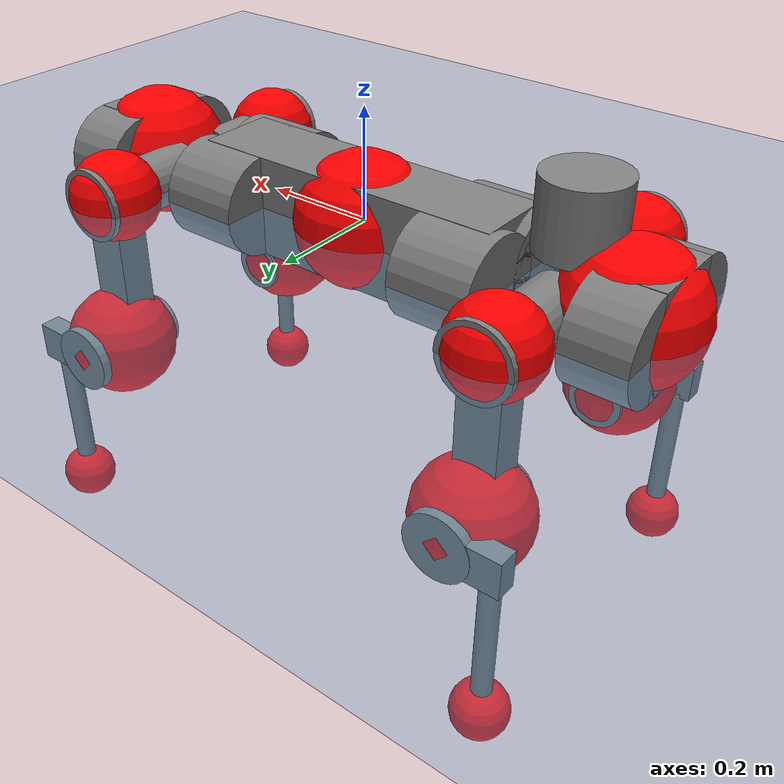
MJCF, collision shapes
<mujoco model="anymal_c">
  <compiler angle="radian" assetdir="assets" balanceinertia="true" inertiafromgeom="false"/>

  <option timestep="0.005" density="1.2" viscosity="2e-05"/>

  <size nkey="1"/>

  <visual>
    <quality shadowsize="8192"/>
    <map shadowclip="0.5"/>
  </visual>

  <default>
    <default class="/">
      <material specular="0" shininess="0.25"/>
      <geom contype="0" conaffinity="0" group="1" solref="-1000 -80"/>
      <site size="0.01 0.005 0.005" group="5"/>
      <general forcelimited="true" forcerange="-80 80" biastype="affine" gainprm="80" biasprm="0 -80 -2"/>
      <default class="anymal_c">
        <joint armature="0.01" damping="0.01" frictionloss="0.1"/>
        <default class="visual">
          <geom type="mesh" group="2"/>
          <default class="visual_zflip"/>
        </default>
        <default class="collision">
          <geom type="cylinder" group="3"/>
          <default class="foot">
            <geom size="0.03 0 0" type="sphere" condim="6" priority="1" friction="0.8 0.02 0.01" solimp="0.015 1 0.03"/>
          </default>
        </default>
      </default>
      <default class="reward_collision_sphere">
        <geom group="5" rgba="1 0 0 1"/>
      </default>
    </default>
  </default>

  <asset>
    <texture type="skybox" colorspace="auto" name="//unnamed_texture_0" builtin="gradient" rgb1="0.95 0.95 0.95" rgb2="0.95 0.95 0.95" width="100" height="600"/>
    <texture type="2d" colorspace="auto" name="texplane" builtin="checker" rgb1="0.345 0.575 0.748" rgb2="0.345 0.575 0.748" markrgb="1 1 1" width="512" height="512"/>
    <texture type="2d" colorspace="linear" name="base" file="base.png"/>
    <texture type="2d" colorspace="linear" name="top_shell" file="top_shell.png"/>
    <texture type="2d" colorspace="linear" name="bottom_shell" file="bottom_shell.png"/>
    <texture type="2d" colorspace="linear" name="remote" file="remote.png"/>
    <texture type="2d" colorspace="linear" name="hatch" file="hatch.png"/>
    <texture type="2d" colorspace="linear" name="handle" file="handle.png"/>
    <texture type="2d" colorspace="linear" name="face" file="face.png"/>
    <texture type="2d" colorspace="linear" name="battery" file="battery.png"/>
    <texture type="2d" colorspace="linear" name="lidar_cage" file="lidar_cage.png"/>
    <texture type="2d" colorspace="linear" name="depth_camera" file="depth_camera.png"/>
    <texture type="2d" colorspace="linear" name="wide_angle_camera" file="wide_angle_camera.png"/>
    <texture type="2d" colorspace="linear" name="lidar" file="lidar.png"/>
    <texture type="2d" colorspace="linear" name="drive" file="drive.png"/>
    <texture type="2d" colorspace="linear" name="hip_l" file="hip_l.png"/>
    <texture type="2d" colorspace="linear" name="shank_l" file="shank_l.png"/>
    <texture type="2d" colorspace="linear" name="foot" file="foot.png"/>
    <texture type="2d" colorspace="linear" name="thigh" file="thigh.png"/>
    <texture type="2d" colorspace="linear" name="shank_r" file="shank_r.png"/>
    <texture type="2d" colorspace="linear" name="hip_r" file="hip_r.png"/>
    <material name="MatPlane" class="/" texture="texplane" texuniform="true" texrepeat="2 2" specular="0.9" shininess="0.5"/>
    <material name="black_plastic" class="/" rgba="0.007 0.007 0.007 1"/>
    <material name="green" class="/" rgba="0.052 0.178 0.033 1"/>
    <material name="red" class="/" rgba="0.178 0.006 0.005 1"/>
    <material name="yellow" class="/" rgba="0.178 0.119 0.006 1"/>
    <material name="lwl" class="/" rgba="0.8 0.8 0.8 1"/>
    <material name="base" class="/" texture="base"/>
    <material name="top_shell" class="/" texture="top_shell"/>
    <material name="bottom_shell" class="/" texture="bottom_shell"/>
    <material name="hip_l" class="/" texture="hip_l"/>
    <material name="thigh" class="/" texture="thigh"/>
    <material name="shank_l" class="/" texture="shank_l"/>
    <material name="foot" class="/" texture="foot"/>
    <material name="hip_r" class="/" texture="hip_r"/>
    <material name="shank" class="/" texture="shank_r"/>
    <material name="hatch" class="/" texture="hatch"/>
    <material name="remote" class="/" texture="remote"/>
    <material name="handle" class="/" texture="handle"/>
    <material name="face" class="/" texture="face"/>
    <material name="depth_camera" class="/" texture="depth_camera"/>
    <material name="wide_angle_camera" class="/" texture="wide_angle_camera"/>
    <material name="battery" class="/" texture="battery"/>
    <material name="lidar_cage" class="/" texture="lidar_cage"/>
    <material name="lidar" class="/" texture="lidar"/>
    <material name="drive" class="/" texture="drive"/>
    <mesh name="base_0" class="/" file="base_0.obj"/>
    <mesh name="base_1" class="/" file="base_1.obj"/>
    <mesh name="base_2" class="/" file="base_2.obj"/>
    <mesh name="base_3" class="/" file="base_3.obj"/>
    <mesh name="base_4" class="/" file="base_4.obj"/>
    <mesh name="base_5" class="/" file="base_5.obj"/>
    <mesh name="top_shell" class="/" file="top_shell.obj"/>
    <mesh name="bottom_shell" class="/" file="bottom_shell.obj"/>
    <mesh name="remote" class="/" file="remote.obj"/>
    <mesh name="handle" class="/" file="handle.obj"/>
    <mesh name="face" class="/" file="face.obj"/>
    <mesh name="wide_angle_camera" class="/" file="wide_angle_camera.obj"/>
    <mesh name="depth_camera" class="/" file="depth_camera.obj"/>
    <mesh name="battery" class="/" file="battery.obj"/>
    <mesh name="lidar_cage" class="/" file="lidar_cage.obj"/>
    <mesh name="lidar" class="/" file="lidar.obj"/>
    <mesh name="drive" class="/" file="drive.obj"/>
    <mesh name="hip_l" class="/" file="hip_l.obj"/>
    <mesh name="thigh" class="/" file="thigh.obj"/>
    <mesh name="shank_l" class="/" file="shank_l.obj"/>
    <mesh name="foot" class="/" file="foot.obj"/>
    <mesh name="hip_r" class="/" file="hip_r.obj"/>
    <mesh name="hatch" class="/" file="hatch.obj"/>
    <mesh name="shank_r" class="/" file="shank_r.obj"/>
  </asset>

  <worldbody>
    <geom name="floor" class="/" size="100 100 0.125" type="plane" group="0" material="MatPlane"/>
    <light name="toplight_shadow" class="/" pos="0 0 5" dir="0.0990148 0.0990148 -0.990148" type="directional" ambient="0.04 0.04 0.04" diffuse="0.55 0.55 0.55" specular="0.12 0.12 0.12"/>
    <light name="toplight_fill" class="/" pos="0 0 5" dir="0.0990148 0.0990148 -0.990148" type="directional" castshadow="false" ambient="0.04 0.04 0.04" diffuse="0.3 0.3 0.3" specular="0.08 0.08 0.08"/>
    <body name="trunk" childclass="anymal_c" pos="0.00224479 -0.000414261 0.000772449" quat="1 -5.65336e-05 0.000806321 0.000482161">
      <inertial pos="0.000429045 -0.000885789 0.0497669" quat="0.50005 0.499925 0.499967 0.500059" mass="18.9658" diaginertia="1.03191 0.425895 0.210176"/>
      <joint name="//unnamed_joint_0" type="free" armature="0" damping="0" frictionloss="0"/>
      <geom name="//unnamed_geom_1" class="visual" material="green" mesh="base_0"/>
      <geom name="//unnamed_geom_2" class="visual" material="yellow" mesh="base_1"/>
      <geom name="//unnamed_geom_3" class="visual" material="red" mesh="base_2"/>
      <geom name="//unnamed_geom_4" class="visual" material="black_plastic" mesh="base_3"/>
      <geom name="//unnamed_geom_5" class="visual" material="lwl" mesh="base_4"/>
      <geom name="//unnamed_geom_6" class="visual" material="base" mesh="base_5"/>
      <geom name="trunk_1" class="collision" size="0.292574 0.0706212 0.0907987" type="box"/>
      <geom name="trunk_2" class="collision" size="0.0907987 0.0731434" pos="0.239637 0.0649465 0" quat="0.707107 0 0.707107 0"/>
      <geom name="trunk_3" class="collision" size="0.0907987 0.0731434" pos="-0.239637 0.0649465 0" quat="0.707107 0 0.707107 0"/>
      <geom name="trunk_4" class="collision" size="0.0907987 0.0731434" pos="0.239637 -0.0649465 0" quat="0.707107 0 0.707107 0"/>
      <geom name="trunk_5" class="collision" size="0.0907987 0.0731434" pos="-0.239637 -0.0649465 0" quat="0.707107 0 0.707107 0"/>
      <geom name="//unnamed_geom_12" class="visual" material="top_shell" mesh="top_shell"/>
      <geom name="//unnamed_geom_13" class="visual" material="bottom_shell" mesh="bottom_shell"/>
      <geom name="//unnamed_geom_14" class="visual" material="remote" mesh="remote"/>
      <geom name="//unnamed_geom_15" class="visual" material="handle" mesh="handle"/>
      <geom name="//unnamed_geom_16" class="visual" pos="0.456687 0 0" quat="1 0 0 0" material="face" mesh="face"/>
      <geom name="trunk_6" class="collision" size="0.0554881 0.0706212 0.0907987" pos="0.517285 0 0" type="box"/>
      <geom name="//unnamed_geom_18" class="collision" size="0.0907987 0.0554881" pos="0.517285 0.0649465 0" quat="0.707107 0 0.707107 0"/>
      <geom name="//unnamed_geom_19" class="collision" size="0.0907987 0.0554881" pos="0.517285 -0.0649465 0" quat="0.707107 0 0.707107 0"/>
      <geom name="//unnamed_geom_20" class="visual" pos="0.508632 0 -0.0283175" quat="0.965926 0 0.258819 0" material="depth_camera" mesh="depth_camera"/>
      <geom name="//unnamed_geom_21" class="visual" pos="0.565212 0 0.0149257" material="wide_angle_camera" mesh="wide_angle_camera"/>
      <geom name="//unnamed_geom_22" class="visual_zflip" pos="-0.456687 0 0" quat="0 0 0 1" material="face" mesh="face"/>
      <geom name="trunk_7" class="collision" size="0.0554881 0.0706212 0.0907987" pos="-0.517285 0 0" quat="0 0 0 1" type="box"/>
      <geom name="//unnamed_geom_24" class="collision" size="0.0907987 0.0554881" pos="-0.517285 -0.0649465 0" quat="0 -0.707107 0 0.707107"/>
      <geom name="//unnamed_geom_25" class="collision" size="0.0907987 0.0554881" pos="-0.517285 0.0649465 0" quat="0 -0.707107 0 0.707107"/>
      <geom name="//unnamed_geom_26" class="visual" pos="-0.508632 0 -0.0283175" quat="0 -0.258819 0 0.965926" material="depth_camera" mesh="depth_camera"/>
      <geom name="//unnamed_geom_27" class="visual_zflip" pos="-0.565212 0 0.0149257" quat="0 0 0 1" material="wide_angle_camera" mesh="wide_angle_camera"/>
      <geom name="//unnamed_geom_28" class="visual" material="battery" mesh="battery"/>
      <geom name="//unnamed_geom_29" class="visual" pos="0 0.068653 0.02976" quat="0.683013 -0.183013 0.183013 0.683013" material="depth_camera" mesh="depth_camera"/>
      <geom name="//unnamed_geom_30" class="visual" pos="0 -0.068653 0.02976" quat="0.683013 0.183013 0.183013 -0.683013" material="depth_camera" mesh="depth_camera"/>
      <geom name="//unnamed_geom_31" class="visual" pos="-0.401047 0 0.0732823" quat="1 0 0 0" material="lidar_cage" mesh="lidar_cage"/>
      <geom name="trunk_8" class="collision" size="0.0706212 0.0605325" pos="-0.401047 0 0.133105"/>
      <geom name="//unnamed_geom_33" class="visual" pos="-0.401047 -6.83485e-05 0.141779" quat="0.707107 0 0 -0.707107" material="lidar" mesh="lidar"/>
      <geom name="//unnamed_geom_34" class="visual" pos="0.330423 0.0965166 -1.19422e-09" quat="0.258819 0.965926 0 0" material="drive" mesh="drive"/>
      <geom name="//unnamed_geom_35" class="visual" pos="0.330423 -0.0965166 1.19422e-09" quat="0.258819 -0.965926 0 0" material="drive" mesh="drive"/>
      <geom name="//unnamed_geom_36" class="visual" pos="-0.330423 0.0965166 1.19422e-09" quat="0 0 0.965926 -0.258819" material="drive" mesh="drive"/>
      <geom name="//unnamed_geom_37" class="visual" pos="-0.330423 -0.0965166 -1.19422e-09" quat="0 0 -0.965926 -0.258819" material="drive" mesh="drive"/>
      <geom name="//unnamed_geom_38" class="visual" pos="0.127806 0 0.0727837" quat="1 0 0 0" material="hatch" mesh="hatch"/>
      <geom name="//unnamed_geom_39" class="reward_collision_sphere" size="0.121065"/>
      <geom name="//unnamed_geom_40" class="reward_collision_sphere" size="0.121065" pos="0.4958 0 0"/>
      <geom name="//unnamed_geom_41" class="reward_collision_sphere" size="0.121065" pos="-0.4958 0 0"/>
      <site name="imu" pos="0.271614 0.00556378 0.0548272" size="0.0100887"/>
      <camera name="track" pos="0 -1.85562 0" quat="0.707107 0.707107 0 0" mode="trackcom"/>
      <camera name="ego_camera" pos="0.4958 0 -0.0398815" quat="-0.5 -0.5 0.5 0.5"/>
      <body name="LF_HIP" pos="0.330727 0.0971613 -0.000104376" quat="0.259054 0.965863 0.000407985 4.61597e-05">
        <inertial pos="0.0619487 -0.0144604 -0.0085315" quat="-0.127653 0.71065 -0.137477 0.678071" mass="2.86956" diaginertia="0.00973297 0.00334177 0.00323583"/>
        <joint name="LF_HAA" pos="0 0 0" axis="0.999908 -0.00136825 0.0134855" range="-0.676337 0.48064" armature="0.00994882" damping="0.00673226" frictionloss="0.101404"/>
        <geom name="//unnamed_geom_42" class="visual" pos="0 -7.02508e-05 1.15386e-05" quat="0.258819 -0.965926 0 0" material="hip_l" mesh="hip_l"/>
        <geom name="//unnamed_geom_43" class="visual" pos="0.0659965 -0.0777028 -0.0453738" quat="0.183013 -0.683013 0.683013 0.183013" material="drive" mesh="drive"/>
        <geom name="//unnamed_geom_44" class="collision" size="0.0504437 0.0706212" pos="0.0659965 -0.0110964 -0.00688454" quat="-0.353553 -0.612372 0.612372 -0.353553"/>
        <body name="LF_THIGH" pos="0.0657017 -0.0671254 -0.0425677" quat="0.182414 -0.6829 0.683289 0.182997">
          <inertial pos="0.0348117 3.06604e-05 -0.246762" quat="0.993189 -0.00518873 -0.080611 0.0839723" mass="3.113" diaginertia="0.0482782 0.0204924 0.00420669"/>
          <joint name="LF_HFE" pos="0 0 0" axis="0.999994 -0.00329092 0.00134779" range="-3.16127 3.13772" armature="0.0105089" damping="0.00724871" frictionloss="0.106008"/>
          <geom name="//unnamed_geom_45" class="visual" pos="0.00346134 5.45425e-06 0" quat="0.707107 0 0 -0.707107" material="thigh" mesh="thigh"/>
          <geom name="//unnamed_geom_46" class="collision" size="0.0655768 0.040355" pos="0.0440711 0 0" quat="0.5 0.5 -0.5 -0.5"/>
          <geom name="//unnamed_geom_47" class="collision" size="0.0378328 0.0302662 0.142568" pos="0.0330534 0 -0.140895" quat="0.707107 0 0 -0.707107" type="box"/>
          <geom name="//unnamed_geom_48" class="visual" pos="0.110508 0 -0.284156" quat="1 0 0 0" material="drive" mesh="drive"/>
          <geom name="//unnamed_geom_49" class="collision" size="0.0504437 0.0706212" pos="0.0333839 0 -0.284156" quat="0.707107 0 0.707107 0"/>
          <geom name="//unnamed_geom_50" class="reward_collision_sphere" size="0.08071" pos="0.0275445 0 0"/>
          <body name="LF_SHANK" pos="0.110674 -0.00219933 -0.283973" quat="1 1.8369e-06 6.52418e-05 5.06013e-05">
            <inertial pos="0.00481309 -0.0568572 -0.0801511" quat="0.992743 -0.116339 -0.00115935 -0.0304069" mass="0.603985" diaginertia="0.0170175 0.00654259 0.00112176"/>
            <joint name="LF_KFE" pos="0 0 0" axis="0.999987 0.0011377 -0.00497715" range="-3.17682 3.14373" armature="0.00982763" damping="0.00148637" frictionloss="0.0981228"/>
            <geom name="//unnamed_geom_51" class="visual" pos="0.00112867 0.0060181 0" quat="0.707107 0 0 -0.707107" material="shank_l" mesh="shank_l"/>
            <geom name="LF_kfe_act" class="collision" size="0.0605325 0.0201775" pos="0.0220356 0 0" quat="0.5 0.5 -0.5 -0.5"/>
            <geom name="//unnamed_geom_53" class="collision" size="0.0580093 0.0340495 0.0191686" pos="0.0220356 -0.053348 0" quat="0.5 0.5 -0.5 -0.5" type="box"/>
            <geom name="//unnamed_geom_54" class="visual" pos="0.0143779 -0.0796613 -0.336969" quat="0.382683 0 0 -0.92388" material="foot" mesh="foot"/>
            <geom name="LF_calf" class="collision" size="0.0176553 0.142506" pos="0.0143782 -0.0816007 -0.168484" quat="0.707107 0 0 -0.707107"/>
            <geom name="LF_foot" class="foot" size="0.0333627" pos="0.0143782 -0.0816007 -0.314535" quat="0.707107 0 0 -0.707107"/>
            <geom name="//unnamed_geom_57" class="reward_collision_sphere" size="0.100887" pos="-0.0550889 0 0"/>
            <geom name="//unnamed_geom_58" class="reward_collision_sphere" size="0.0504437" pos="0.0143782 -0.0816007 -0.314535"/>
            <site name="LF_foot" class="foot" pos="0.0143782 -0.0816007 -0.314535" quat="0.707107 0 0 -0.707107" size="0.0100887"/>
          </body>
        </body>
      </body>
      <body name="RF_HIP" pos="0.331029 -0.0969024 -0.00166112" quat="0.258243 -0.96608 -0.000110313 -6.08975e-05">
        <inertial pos="0.0620195 0.0131345 -0.00851847" quat="0.133155 0.68317 0.130222 0.706109" mass="2.83586" diaginertia="0.00945979 0.00339961 0.00325023"/>
        <joint name="RF_HAA" pos="0 0 0" axis="0.999991 0.00164862 -0.00401537" range="-0.512547 0.720084" armature="0.00967836" damping="0.0131564" frictionloss="0.0939143"/>
        <geom name="//unnamed_geom_59" class="visual" pos="0 7.02502e-05 1.15386e-05" quat="0.258819 0.965926 0 0" material="hip_r" mesh="hip_r"/>
        <geom name="//unnamed_geom_60" class="visual" pos="0.0659965 0.0777028 -0.0453738" quat="0.183013 0.683013 0.683013 -0.183013" material="drive" mesh="drive"/>
        <geom name="//unnamed_geom_61" class="collision" size="0.0504437 0.0706212" pos="0.0659965 0.0110964 -0.00688454" quat="-0.353553 0.612372 0.612372 0.353553"/>
        <body name="RF_THIGH" pos="0.0664501 0.0648675 -0.0428282" quat="0.183043 0.683091 0.682904 -0.183094">
          <inertial pos="0.0336807 -0.000938272 -0.245284" quat="0.992836 -0.00451418 -0.0801877 0.0884606" mass="3.18021" diaginertia="0.0492205 0.0209867 0.00422593"/>
          <joint name="RF_HFE" pos="0 0 0" axis="1 0.000137936 0.000225555" range="-3.14918 3.16243" armature="0.0100479" damping="0.0116968" frictionloss="0.0964514"/>
          <geom name="//unnamed_geom_62" class="visual" pos="0.00346134 5.45425e-06 0" quat="0.707107 0 0 -0.707107" material="thigh" mesh="thigh"/>
          <geom name="//unnamed_geom_63" class="collision" size="0.0655768 0.040355" pos="0.0440711 0 0" quat="0.5 0.5 0.5 0.5"/>
          <geom name="//unnamed_geom_64" class="collision" size="0.0378328 0.0302662 0.142568" pos="0.0330534 0 -0.140895" quat="0.707107 0 0 0.707107" type="box"/>
          <geom name="//unnamed_geom_65" class="visual" pos="0.110508 0 -0.284156" quat="1 0 0 0" material="drive" mesh="drive"/>
          <geom name="//unnamed_geom_66" class="collision" size="0.0504437 0.0706212" pos="0.0333839 0 -0.284156" quat="0.707107 0 0.707107 0"/>
          <geom name="//unnamed_geom_67" class="reward_collision_sphere" size="0.08071" pos="0.0275445 0 0"/>
          <body name="RF_SHANK" pos="0.110453 -0.000818268 -0.283135" quat="1 -7.09069e-05 5.0054e-05 7.35032e-05">
            <inertial pos="0.00610959 0.0571939 -0.0805808" quat="0.992959 0.114779 -0.00896092 0.0278997" mass="0.604579" diaginertia="0.016556 0.00636428 0.00109605"/>
            <joint name="RF_KFE" pos="0 0 0" axis="0.999983 -0.0042039 -0.0039306" range="-3.12352 3.14562" armature="0.0105741" damping="0.0126724" frictionloss="0.105826"/>
            <geom name="//unnamed_geom_68" class="visual" pos="0.00112866 -0.00601809 0" quat="0.707107 0 0 0.707107" material="shank" mesh="shank_r"/>
            <geom name="RF_kfe_act" class="collision" size="0.0605325 0.0201775" pos="0.0220356 0 0" quat="0.5 0.5 0.5 0.5"/>
            <geom name="//unnamed_geom_70" class="collision" size="0.0580093 0.0340495 0.0191686" pos="0.0220356 0.053348 0" quat="0.5 0.5 0.5 0.5" type="box"/>
            <geom name="//unnamed_geom_71" class="visual" pos="0.0143785 0.0796613 -0.336969" quat="0.382683 0 0 0.92388" material="foot" mesh="foot"/>
            <geom name="RF_calf" class="collision" size="0.0176553 0.142506" pos="0.0143782 0.0816007 -0.168484" quat="0.707107 0 0 0.707107"/>
            <geom name="RF_foot" class="foot" size="0.0290986" pos="0.0143782 0.0816007 -0.314535" quat="0.707107 0 0 0.707107"/>
            <geom name="//unnamed_geom_74" class="reward_collision_sphere" size="0.100887" pos="-0.0550889 0 0"/>
            <geom name="//unnamed_geom_75" class="reward_collision_sphere" size="0.0504437" pos="0.0143782 0.0816007 -0.314535"/>
            <site name="RF_foot" class="foot" pos="0.0143782 0.0816007 -0.314535" quat="0.707107 0 0 0.707107" size="0.0100887"/>
          </body>
        </body>
      </body>
      <body name="LH_HIP" pos="-0.329874 0.0969768 0.000337268" quat="0.000100241 0.000104117 0.965989 -0.258583">
        <inertial pos="0.0615618 0.0159437 -0.00906396" quat="0.124808 0.676877 0.126716 0.714285" mass="2.91352" diaginertia="0.00953721 0.0033807 0.00330068"/>
        <joint name="LH_HAA" pos="0 0 0" axis="0.999997 -0.00241907 0.000408666" range="-0.499764 0.727391" armature="0.00951209" damping="0.0147415" frictionloss="0.109315"/>
        <geom name="//unnamed_geom_76" class="visual" pos="0 7.02502e-05 1.15386e-05" quat="-0.258819 -0.965926 0 0" material="hip_r" mesh="hip_r"/>
        <geom name="//unnamed_geom_77" class="visual" pos="0.0659965 0.0777028 -0.0453738" quat="0.183013 0.683013 0.683013 -0.183013" material="drive" mesh="drive"/>
        <geom name="//unnamed_geom_78" class="collision" size="0.0504437 0.0706212" pos="0.0659965 0.0110964 -0.00688454" quat="-0.353553 0.612372 0.612372 0.353553"/>
        <body name="LH_THIGH" pos="0.0652544 0.065618 -0.041132" quat="0.182896 0.682984 0.683117 -0.182847">
          <inertial pos="0.0340555 2.91179e-05 -0.244706" quat="0.992799 -0.00555478 -0.0767289 0.091831" mass="3.2024" diaginertia="0.0486704 0.0203831 0.00409231"/>
          <joint name="LH_HFE" pos="0 0 0" axis="0.999998 0.00178607 -0.000431544" range="-3.13753 3.1492" armature="0.0104611" damping="0.010452" frictionloss="0.100996"/>
          <geom name="//unnamed_geom_79" class="visual" pos="0.00346134 5.45425e-06 0" quat="0.707107 0 0 -0.707107" material="thigh" mesh="thigh"/>
          <geom name="//unnamed_geom_80" class="collision" size="0.0655768 0.040355" pos="0.0440711 0 0" quat="0.5 0.5 -0.5 -0.5"/>
          <geom name="//unnamed_geom_81" class="collision" size="0.0378328 0.0302662 0.142568" pos="0.0330534 0 -0.140895" quat="0.707107 0 0 -0.707107" type="box"/>
          <geom name="//unnamed_geom_82" class="visual" pos="0.110508 0 -0.284156" quat="1 0 0 0" material="drive" mesh="drive"/>
          <geom name="//unnamed_geom_83" class="collision" size="0.0504437 0.0706212" pos="0.0333839 0 -0.284156" quat="0.707107 0 0.707107 0"/>
          <geom name="//unnamed_geom_84" class="reward_collision_sphere" size="0.08071" pos="0.0275445 0 0"/>
          <body name="LH_SHANK" pos="0.11074 -0.000597498 -0.28581" quat="1 -8.02211e-05 -2.06944e-05 1.7494e-05">
            <inertial pos="0.00705751 0.0588642 -0.0799586" quat="0.992796 0.116845 -0.00334772 0.0263206" mass="0.596656" diaginertia="0.0163846 0.00629267 0.00105931"/>
            <joint name="LH_KFE" pos="0 0 0" axis="1 -5.82779e-05 -2.91665e-05" range="-3.14315 3.12347" armature="0.00992622" damping="0.00733445" frictionloss="0.111419"/>
            <geom name="//unnamed_geom_85" class="visual" pos="0.00112866 -0.00601809 0" quat="-0.707107 0 0 -0.707107" material="shank" mesh="shank_r"/>
            <geom name="LH_kfe_act" class="collision" size="0.0605325 0.0201775" pos="0.0220356 0 0" quat="0.5 0.5 -0.5 -0.5"/>
            <geom name="//unnamed_geom_87" class="collision" size="0.0580093 0.0340495 0.0191686" pos="0.0220356 0.053348 0" quat="0.5 0.5 -0.5 -0.5" type="box"/>
            <geom name="//unnamed_geom_88" class="visual" pos="0.0143785 0.0796613 -0.336969" quat="-0.382683 0 0 -0.92388" material="foot" mesh="foot"/>
            <geom name="LH_calf" class="collision" size="0.0176553 0.142506" pos="0.0143782 0.0816007 -0.168484" quat="0.707107 0 0 -0.707107"/>
            <geom name="LH_foot" class="foot" size="0.0316589" pos="0.0143782 0.0816007 -0.314535" quat="0.707107 0 0 -0.707107"/>
            <geom name="//unnamed_geom_91" class="reward_collision_sphere" size="0.100887" pos="-0.0550889 0 0"/>
            <geom name="//unnamed_geom_92" class="reward_collision_sphere" size="0.0504437" pos="0.0143782 0.0816007 -0.314535"/>
            <site name="LH_foot" class="foot" pos="0.0143782 0.0816007 -0.314535" quat="0.707107 0 0 -0.707107" size="0.0100887"/>
          </body>
        </body>
      </body>
      <body name="RH_HIP" pos="-0.331283 -0.0964709 -0.000506986" quat="0.000197084 -0.00101639 -0.965992 -0.258569">
        <inertial pos="0.064543 -0.0136146 -0.0106078" quat="-0.128292 0.709765 -0.13742 0.67889" mass="2.8633" diaginertia="0.00956328 0.00339225 0.00322583"/>
        <joint name="RH_HAA" pos="0 0 0" axis="0.999925 -0.00461299 0.0113613" range="-0.743221 0.495395" armature="0.0104618" damping="0.0090347" frictionloss="0.100522"/>
        <geom name="//unnamed_geom_93" class="visual" pos="0 -7.02508e-05 1.15386e-05" quat="-0.258819 0.965926 0 0" material="hip_l" mesh="hip_l"/>
        <geom name="//unnamed_geom_94" class="visual" pos="0.0659965 -0.0777028 -0.0453738" quat="-0.183013 0.683013 -0.683013 -0.183013" material="drive" mesh="drive"/>
        <geom name="//unnamed_geom_95" class="collision" size="0.0504437 0.0706212" pos="0.0659965 -0.0110964 -0.00688454" quat="0.353553 0.612372 -0.612372 0.353553"/>
        <body name="RH_THIGH" pos="0.0664464 -0.0674117 -0.0440783" quat="-0.182946 0.683085 -0.682927 -0.183129">
          <inertial pos="0.0336274 0.00016531 -0.244753" quat="0.993078 -0.00448731 -0.0808462 0.0850858" mass="3.09483" diaginertia="0.0490039 0.0205845 0.00413195"/>
          <joint name="RH_HFE" pos="0 0 0" axis="0.999999 0.000142749 0.0011476" range="-3.14243 3.17494" armature="0.00981855" damping="0.00687106" frictionloss="0.100349"/>
          <geom name="//unnamed_geom_96" class="visual" pos="0.00346134 5.45425e-06 0" quat="0.707107 0 0 -0.707107" material="thigh" mesh="thigh"/>
          <geom name="//unnamed_geom_97" class="collision" size="0.0655768 0.040355" pos="0.0440711 0 0" quat="0.5 0.5 0.5 0.5"/>
          <geom name="//unnamed_geom_98" class="collision" size="0.0378328 0.0302662 0.142568" pos="0.0330534 0 -0.140895" quat="0.707107 0 0 0.707107" type="box"/>
          <geom name="//unnamed_geom_99" class="visual" pos="0.110508 0 -0.284156" quat="1 0 0 0" material="drive" mesh="drive"/>
          <geom name="//unnamed_geom_100" class="collision" size="0.0504437 0.0706212" pos="0.0333839 0 -0.284156" quat="0.707107 0 0.707107 0"/>
          <geom name="//unnamed_geom_101" class="reward_collision_sphere" size="0.08071" pos="0.0275445 0 0"/>
          <body name="RH_SHANK" pos="0.110109 0.000718963 -0.284687" quat="1 -5.4381e-06 -3.41627e-05 0.000102462">
            <inertial pos="0.00549688 -0.0563512 -0.0801972" quat="0.992819 -0.116394 -0.000691884 -0.0276101" mass="0.600062" diaginertia="0.0162689 0.00632029 0.00111755"/>
            <joint name="RH_KFE" pos="0 0 0" axis="0.999928 -0.00165787 -0.0118984" stiffness="0.000969567" range="-3.11693 3.13938" armature="0.0104936" damping="0.0158866" frictionloss="0.104679"/>
            <geom name="//unnamed_geom_102" class="visual" pos="0.00112867 0.0060181 0" quat="0.707107 0 0 -0.707107" material="shank_l" mesh="shank_l"/>
            <geom name="RH_kfe_act" class="collision" size="0.0605325 0.0201775" pos="0.0220356 0 0" quat="0.5 0.5 0.5 0.5"/>
            <geom name="//unnamed_geom_104" class="collision" size="0.0580093 0.0340495 0.0191686" pos="0.0220356 -0.053348 0" quat="0.5 0.5 0.5 0.5" type="box"/>
            <geom name="//unnamed_geom_105" class="visual" pos="0.0143779 -0.0796613 -0.336969" quat="0.382683 0 0 -0.92388" material="foot" mesh="foot"/>
            <geom name="RH_calf" class="collision" size="0.0176553 0.142506" pos="0.0143782 -0.0816007 -0.168484" quat="0.707107 0 0 0.707107"/>
            <geom name="RH_foot" class="foot" size="0.0273398" pos="0.0143782 -0.0816007 -0.314535" quat="0.707107 0 0 0.707107"/>
            <geom name="//unnamed_geom_108" class="reward_collision_sphere" size="0.100887" pos="-0.0550889 0 0"/>
            <geom name="//unnamed_geom_109" class="reward_collision_sphere" size="0.0504437" pos="0.0143782 -0.0816007 -0.314535"/>
            <site name="RH_foot" class="foot" pos="0.0143782 -0.0816007 -0.314535" quat="0.707107 0 0 0.707107" size="0.0100887"/>
          </body>
        </body>
      </body>
    </body>
  </worldbody>

  <contact>
    <pair class="/" geom1="floor" geom2="LF_foot" name="//unnamed_contact_0"/>
    <pair class="/" geom1="floor" geom2="RF_foot" name="//unnamed_contact_1"/>
    <pair class="/" geom1="floor" geom2="LH_foot" name="//unnamed_contact_2"/>
    <pair class="/" geom1="floor" geom2="RH_foot" name="//unnamed_contact_3"/>
  </contact>

  <actuator>
    <general name="LF_HAA" class="/" joint="LF_HAA" forcerange="-81.2501 81.2501" gainprm="79.4806" biasprm="0 -79.4806 -1.94502"/>
    <general name="LF_HFE" class="/" joint="LF_HFE" forcerange="-82.4313 82.4313" gainprm="79.4806" biasprm="0 -79.4806 -1.94502"/>
    <general name="LF_KFE" class="/" joint="LF_KFE" forcerange="-79.6176 79.6176" gainprm="79.4806" biasprm="0 -79.4806 -1.94502"/>
    <general name="RF_HAA" class="/" joint="RF_HAA" forcerange="-82.108 82.108" gainprm="79.4806" biasprm="0 -79.4806 -1.94502"/>
    <general name="RF_HFE" class="/" joint="RF_HFE" forcerange="-81.1986 81.1986" gainprm="79.4806" biasprm="0 -79.4806 -1.94502"/>
    <general name="RF_KFE" class="/" joint="RF_KFE" forcerange="-80.2074 80.2074" gainprm="79.4806" biasprm="0 -79.4806 -1.94502"/>
    <general name="LH_HAA" class="/" joint="LH_HAA" forcerange="-87.5728 87.5728" gainprm="79.4806" biasprm="0 -79.4806 -1.94502"/>
    <general name="LH_HFE" class="/" joint="LH_HFE" forcerange="-83.5535 83.5535" gainprm="79.4806" biasprm="0 -79.4806 -1.94502"/>
    <general name="LH_KFE" class="/" joint="LH_KFE" forcerange="-75.9637 75.9637" gainprm="79.4806" biasprm="0 -79.4806 -1.94502"/>
    <general name="RH_HAA" class="/" joint="RH_HAA" forcerange="-80.9567 80.9567" gainprm="79.4806" biasprm="0 -79.4806 -1.94502"/>
    <general name="RH_HFE" class="/" joint="RH_HFE" forcerange="-87.0784 87.0784" gainprm="79.4806" biasprm="0 -79.4806 -1.94502"/>
    <general name="RH_KFE" class="/" joint="RH_KFE" forcerange="-81.9138 81.9138" gainprm="79.4806" biasprm="0 -79.4806 -1.94502"/>
  </actuator>

  <sensor>
    <gyro site="imu" name="imu_angular_velocity"/>
    <velocimeter site="imu" name="imu_linear_velocity"/>
    <framelinvel objtype="site" objname="LF_foot" name="LF_foot_global_linear_velocity"/>
    <framelinvel objtype="site" objname="RF_foot" name="RF_foot_global_linear_velocity"/>
    <framelinvel objtype="site" objname="LH_foot" name="LH_foot_global_linear_velocity"/>
    <framelinvel objtype="site" objname="RH_foot" name="RH_foot_global_linear_velocity"/>
  </sensor>

  <keyframe>
    <key name="home" qpos="0 0 0.55 1 0 0 0 0 0.4 -0.8 0 -0.4 0.8 0 -0.4 0.8 0 0.4 -0.8"/>
  </keyframe>
</mujoco>
